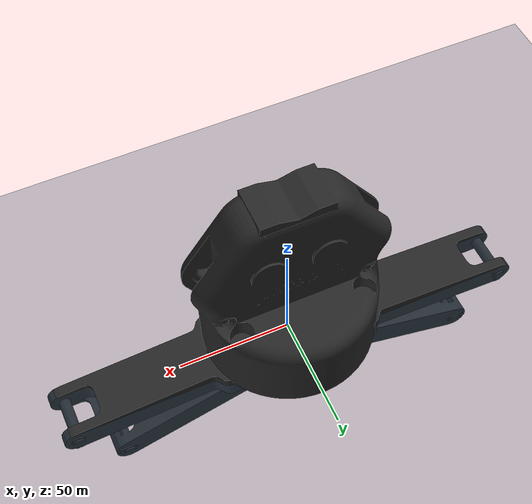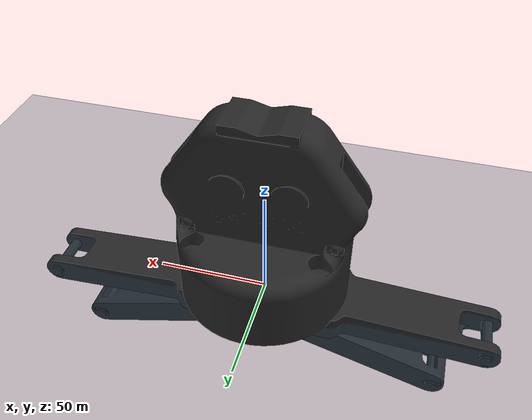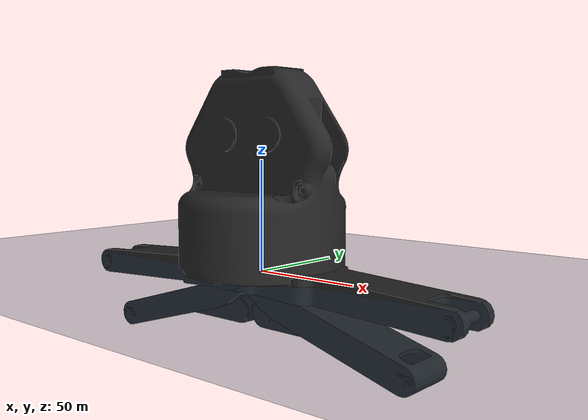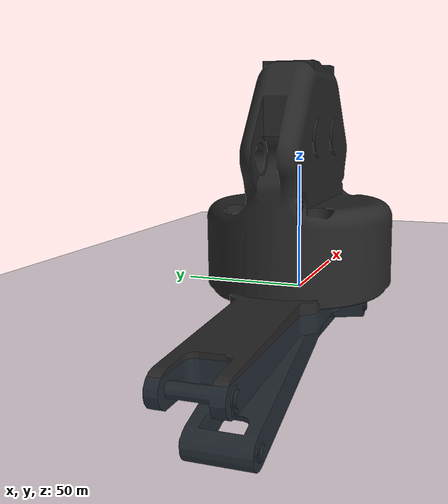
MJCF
<mujoco model="2f140 scene">
  <include file="2f140.xml"/>

  <!-- Add some fluid viscosity to prevent the hanging box from jiggling forever -->
  <option viscosity="0.1"/>

  <statistic center="0 0 0.05" extent="0.3"/>

  <visual>
    <headlight diffuse="0.6 0.6 0.6" ambient="0.3 0.3 0.3" specular="0 0 0"/>
    <rgba haze="0.15 0.25 0.35 1"/>
    <global azimuth="60" elevation="-20"/>
  </visual>

  <asset>
    <texture type="skybox" builtin="gradient" rgb1="0.3 0.5 0.7" rgb2="0 0 0" width="512" height="3072"/>
    <texture type="2d" name="groundplane" builtin="checker" mark="edge" rgb1="0.2 0.3 0.4" rgb2="0.1 0.2 0.3"
      markrgb="0.8 0.8 0.8" width="300" height="300"/>
    <material name="groundplane" texture="groundplane" texuniform="true" texrepeat="5 5" reflectance="0.2"/>
  </asset>

  <worldbody>
    <light pos="0 0 1"/>
    <light pos="0 -0.2 1" dir="0 0.2 -0.8" directional="true"/>
    <geom name="floor" size="0 0 0.05" type="plane" material="groundplane"/>
    <site size="0.002" pos="0 0 0.27" name="anchor"/>
    <body name="object" pos="0 0 0.26">
      <freejoint/>
      <geom type="box" size="0.015 0.015 0.015" rgba=".5 .7 .5 1" friction=".5" priority="1"/>
      <site size="0.002" pos="0.015 0.015 0.015" name="hook"/>
    </body>
  </worldbody>

  <tendon>
    <spatial limited="true" range="0 0.02" width="0.001">
      <site site="hook"/>
      <site site="anchor"/>
    </spatial>
  </tendon>
</mujoco>

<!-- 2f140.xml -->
<mujoco model="robotiq_2f140">
  <compiler angle="radian" meshdir="assets" autolimits="true"/>

  <option cone="elliptic" impratio="10"/>

  <asset>
    <material name="metal" rgba="0.58 0.58 0.58 1"/>
    <material name="silicone" rgba="0.1882 0.1882 0.1882 1"/>
    <material name="gray" rgba="0.4627 0.4627 0.4627 1"/>
    <material name="black" rgba="0.149 0.149 0.149 1"/>

    <mesh class="2f140" scale="0.001 0.001 0.001" file="base_mount.stl"/>
    <mesh class="2f140" file="base.stl"/>
    <mesh class="2f140" file="driver.stl"/>
    <mesh class="2f140" file="follower.stl"/>
    <mesh class="2f140" file="coupler.stl"/>
    <mesh class="2f140" scale="0.001 0.001 0.001" file="pad.stl"/>
    <mesh class="2f140" file="spring_link.stl"/>
  </asset>

  <default>
    <default class="2f140">
      <general biastype="affine"/>
      <joint axis="1 0 0"/>
      <default class="driver">
        <joint range="-0.8 0" armature="0.005" damping="0.1" solimplimit="0.95 0.99 0.001" solreflimit="0.005 1"/>
      </default>
      <default class="follower">
        <joint range="-0.8757 0.8757" armature="0.001" solimplimit="0.95 0.99 0.001" pos="0 0.005 -0.0175" solreflimit="0.005 1"/>
      </default>
      <default class="spring_link">
        <joint range="-0.8 0.29670597283" armature="0.001" stiffness="0.05" springref="-2.62" damping="0.00125"/>
      </default>
      <default class="coupler">
        <joint range="0 1.57" armature="0.001" solimplimit="0.95 0.99 0.001" solreflimit="0.005 1"/>
      </default>

      <default class="visual">
        <geom type="mesh" contype="0" conaffinity="0" group="2"/>
      </default>
      <default class="collision">
        <geom type="mesh" group="3"/>
        <default class="pad_box1">
          <geom mass="0" type="box" pos="0 0.0457554 -0.0272203" size="0.0135 0.0325 0.00375" friction="0.7"
            solimp="0.95 0.99 0.001" solref="0.004 1" priority="1" rgba="0.55 0.55 0.55 1"/>
        </default>
      </default>
    </default>
  </default>
  <worldbody>
    <body name="base_mount" pos="0 0 0.007" childclass="2f140">
      <geom class="visual" mesh="base_mount" material="black"/>
      <geom class="collision" mesh="base_mount"/>
      <body name="base" pos="0 0 0.0038" quat="1 0 0 -1">
        <inertial mass="0.777441" pos="0 -2.70394e-05 0.0354675" quat="1 -0.00152849 0 0"
          diaginertia="0.000260285 0.000225381 0.000152708"/>
        <geom class="visual" mesh="base" material="black"/>
        <geom class="collision" mesh="base"/>
        <!-- Right-hand side 4-bar linkage -->
        <body name="right_driver" pos="0 0.030601 0.054905" quat="0 0 0.911903 0.410405">
          <joint name="right_driver_joint" class="driver"/>
          <geom class="visual" mesh="driver" material="gray"/>
          <geom class="collision" mesh="driver"/>
          <body name="right_coupler" pos="0 0.01822 0.026001" quat="1 0 0 0">
            <inertial pos="0.000163875 0.0458404 -0.0117804" quat="0.881368 0.472423 -0.0024451 -0.000996122" mass="0.0311462" diaginertia="2.96023e-05 2.79814e-05 4.39017e-06"/>
            <joint name="right_coupler_joint" class="coupler"/>
            <geom class="visual" mesh="coupler" material="black"/>
            <geom class="collision" mesh="coupler"/>
          </body>
        </body>
        <body name="right_spring_link" pos="0 0.0127 0.06142" quat="0 0 -0.9135455 -0.406736">
          <inertial mass="0.0271177" pos="0.000123012 0.0507851 0.00103969" quat="0.497203 0.502496 -0.507943 0.492221"
            diaginertia="2.83809e-05 2.61936e-05 2.81319e-06"/>
          <joint name="right_spring_link_joint" class="spring_link"/>
          <geom class="visual" mesh="spring_link" material="black"/>
          <geom class="collision" mesh="spring_link"/>
          <body name="right_follower" pos="0 0.107454 0.01451853" quat="0.935013 -0.354613 0 0">
            <inertial mass="0.0261503" pos="0.000119314 0.0339244 -0.021841" quat="0.545437 0.430197 -0.442938 0.566776"
              diaginertia="1.62408e-05 1.59131e-05 2.38936e-06"/>
            <joint name="right_follower_joint" class="follower"/>
            <geom class="visual" mesh="follower" material="black"/>
            <geom class="collision" mesh="follower"/>
            <body name="right_pad" pos="0 0.012 -0.0276" quat="0.707107 -0.707107 0 0">
              <inertial mass="0.0035" pos="0 -0.0025 0.0185" quat="0.707107 0 0 0.707107"
                diaginertia="4.73958e-07 3.64583e-07 1.23958e-07"/>
              <geom class="visual" mesh="pad"/>
            </body>
            <geom class="pad_box1" name="right_pad1"/>
          </body>
        </body>
        <!-- Left-hand side 4-bar linkage -->
        <body name="left_driver" pos="0 -0.0306011 0.054904" quat="0.410405 0.911903 0 0">
          <joint name="left_driver_joint" class="driver"/>
          <geom class="visual" mesh="driver" material="gray"/>
          <geom class="collision" mesh="driver"/>
          <body name="left_coupler" pos="0 0.01822 0.026001" quat="1 0 0 0">
            <inertial pos="0.000163875 0.0458404 -0.0117804" quat="0.881368 0.472423 -0.0024451 -0.000996122" mass="0.0311462" diaginertia="2.96023e-05 2.79814e-05 4.39017e-06"/>
            <joint name="left_coupler_joint" class="coupler"/>
            <geom class="visual" mesh="coupler" material="black"/>
            <geom class="collision" mesh="coupler"/>
          </body>
        </body>
        <body name="left_spring_link" pos="0 -0.0127 0.06142" quat="0.410405 0.911903 0 0">
          <inertial mass="0.0271177" pos="0.000123012 0.0507851 0.00103969" quat="0.497203 0.502496 -0.507943 0.492221"
            diaginertia="2.83809e-05 2.61936e-05 2.81319e-06"/>
          <joint name="left_spring_link_joint" class="spring_link"/>
          <geom class="visual" mesh="spring_link" material="black"/>
          <geom class="collision" mesh="spring_link"/>
          <body name="left_follower" pos="0 0.107454 0.01451853" quat="0.935013 -0.354613 0 0">
            <inertial mass="0.0261503" pos="0.000119314 0.0339244 -0.021841" quat="0.545437 0.430197 -0.442938 0.566776"
              diaginertia="1.62408e-05 1.59131e-05 2.38936e-06"/>
            <joint name="left_follower_joint" class="follower"/>
            <geom class="visual" mesh="follower" material="black"/>
            <geom class="collision" mesh="follower"/>
            <body name="left_pad" pos="0 0.012 -0.0276" quat="0.707107 -0.707107 0 0">
              <inertial mass="0.0035" pos="0 -0.0025 0.0185" quat="1 0 0 1"
                diaginertia="4.73958e-07 3.64583e-07 1.23958e-07"/>
              <geom class="visual" mesh="pad"/>
            </body>
            <geom class="pad_box1" name="left_pad1"/>
          </body>
        </body>
      </body>
    </body>
  </worldbody>

  <contact>
    <exclude body1="base" body2="left_driver"/>
    <exclude body1="base" body2="right_driver"/>
    <exclude body1="base" body2="left_spring_link"/>
    <exclude body1="base" body2="right_spring_link"/>
    <exclude body1="left_driver" body2="left_spring_link"/>
    <exclude body1="right_driver" body2="right_spring_link"/>
    <exclude body1="right_coupler" body2="right_follower"/>
    <exclude body1="left_coupler" body2="left_follower"/>
  </contact>

  <tendon>
    <fixed name="split">
      <joint joint="right_driver_joint" coef="-0.5"/>
      <joint joint="left_driver_joint" coef="-0.5"/>
    </fixed>
  </tendon>

  <equality>
    <connect anchor="0 0 0" body1="right_follower" body2="right_coupler" solimp="0.95 0.99 0.001" solref="0.005 1"/>
    <connect anchor="0 0 0" body1="left_follower" body2="left_coupler" solimp="0.95 0.99 0.001" solref="0.005 1"/>
    <joint joint1="right_driver_joint" joint2="left_driver_joint" polycoef="0 1 0 0 0" solimp="0.95 0.99 0.001"
      solref="0.005 1"/>
  </equality>

  <actuator>
    <general class="2f140" name="fingers_actuator" tendon="split" forcerange="-5 5" ctrlrange="0 255"
      gainprm="0.3137255 0 0" biasprm="0 -100 -10"/>
  </actuator>
</mujoco>
